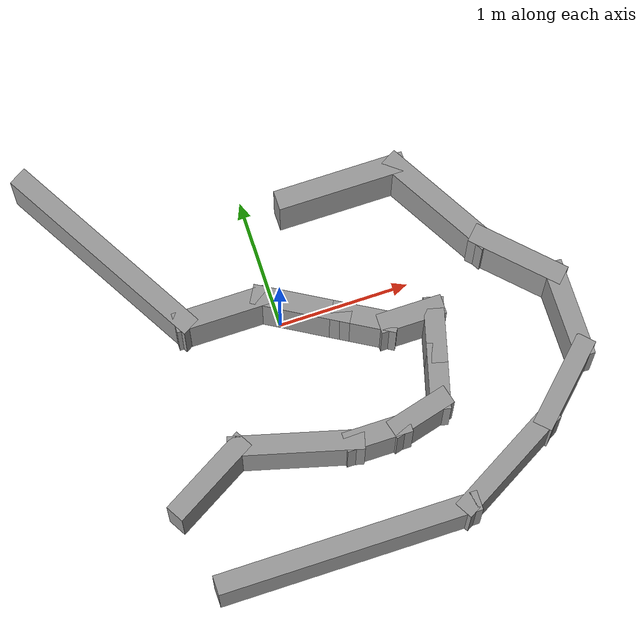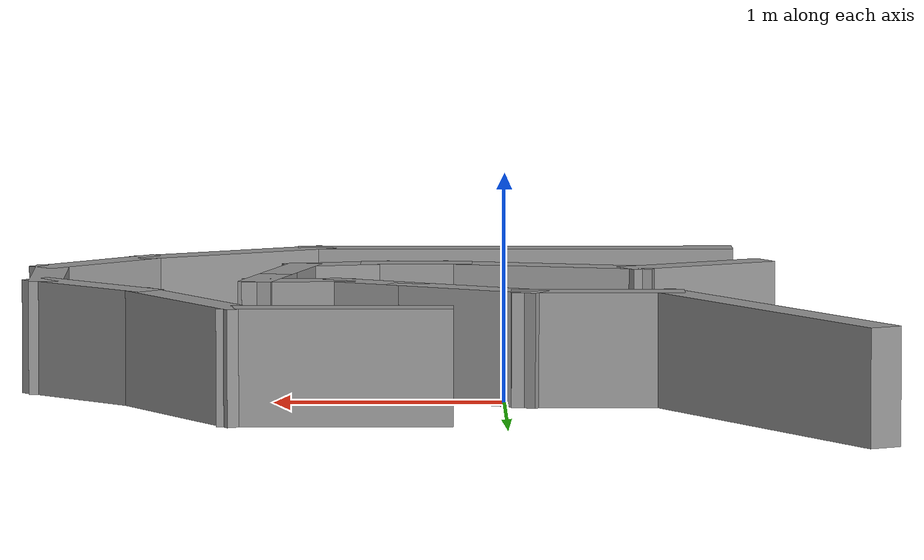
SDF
<?xml version='1.0'?>
<sdf version='1.6'>
  <model name='narrow_passage'>
    <pose frame=''>0.252807 -0.159194 0 0 -0 0</pose>
    <link name='Wall_10'>
      <collision name='Wall_10_Collision'>
        <geometry>
          <box>
            <size>1 0.15 0.5</size>
          </box>
        </geometry>
        <pose frame=''>0 0 0.25 0 -0 0</pose>
      </collision>
      <visual name='Wall_10_Visual'>
        <pose frame=''>0 0 0.25 0 -0 0</pose>
        <geometry>
          <box>
            <size>1 0.15 0.5</size>
          </box>
        </geometry>
        <material>
          <script>
            <uri>file://media/materials/scripts/gazebo.material</uri>
            <name>Gazebo/Grey</name>
          </script>
          <ambient>1 1 1 1</ambient>
        </material>
        <meta>
          <layer>0</layer>
        </meta>
      </visual>
      <pose frame=''>1.11369 0.575194 0 0 -0 2.09447</pose>
    </link>
    <link name='Wall_11'>
      <collision name='Wall_11_Collision'>
        <geometry>
          <box>
            <size>1 0.15 0.5</size>
          </box>
        </geometry>
        <pose frame=''>0 0 0.25 0 -0 0</pose>
      </collision>
      <visual name='Wall_11_Visual'>
        <pose frame=''>0 0 0.25 0 -0 0</pose>
        <geometry>
          <box>
            <size>1 0.15 0.5</size>
          </box>
        </geometry>
        <material>
          <script>
            <uri>file://media/materials/scripts/gazebo.material</uri>
            <name>Gazebo/Grey</name>
          </script>
          <ambient>1 1 1 1</ambient>
        </material>
        <meta>
          <layer>0</layer>
        </meta>
      </visual>
      <pose frame=''>0.476193 0.943194 0 0 -0 3.14159</pose>
    </link>
    <link name='Wall_13'>
      <collision name='Wall_13_Collision'>
        <geometry>
          <box>
            <size>0.75 0.15 0.5</size>
          </box>
        </geometry>
        <pose frame=''>0 0 0.25 0 -0 0</pose>
      </collision>
      <visual name='Wall_13_Visual'>
        <pose frame=''>0 0 0.25 0 -0 0</pose>
        <geometry>
          <box>
            <size>0.75 0.15 0.5</size>
          </box>
        </geometry>
        <material>
          <script>
            <uri>file://media/materials/scripts/gazebo.material</uri>
            <name>Gazebo/Grey</name>
          </script>
          <ambient>1 1 1 1</ambient>
        </material>
        <meta>
          <layer>0</layer>
        </meta>
      </visual>
      <pose frame=''>-1.13231 -0.890806 0 0 -0 0.524112</pose>
    </link>
    <link name='Wall_14'>
      <collision name='Wall_14_Collision'>
        <geometry>
          <box>
            <size>1 0.15 0.5</size>
          </box>
        </geometry>
        <pose frame=''>0 0 0.25 0 -0 0</pose>
      </collision>
      <visual name='Wall_14_Visual'>
        <pose frame=''>0 0 0.25 0 -0 0</pose>
        <geometry>
          <box>
            <size>1 0.15 0.5</size>
          </box>
        </geometry>
        <material>
          <script>
            <uri>file://media/materials/scripts/gazebo.material</uri>
            <name>Gazebo/Grey</name>
          </script>
          <ambient>1 1 1 1</ambient>
        </material>
        <meta>
          <layer>0</layer>
        </meta>
      </visual>
      <pose frame=''>-0.462307 -0.850806 0 0 -0 -0.261815</pose>
    </link>
    <link name='Wall_15'>
      <collision name='Wall_15_Collision'>
        <geometry>
          <box>
            <size>0.5 0.15 0.5</size>
          </box>
        </geometry>
        <pose frame=''>0 0 0.25 0 -0 0</pose>
      </collision>
      <visual name='Wall_15_Visual'>
        <pose frame=''>0 0 0.25 0 -0 0</pose>
        <geometry>
          <box>
            <size>0.5 0.15 0.5</size>
          </box>
        </geometry>
        <material>
          <script>
            <uri>file://media/materials/scripts/gazebo.material</uri>
            <name>Gazebo/Grey</name>
          </script>
          <ambient>1 1 1 1</ambient>
        </material>
        <meta>
          <layer>0</layer>
        </meta>
      </visual>
      <pose frame=''>0.123193 -0.960806 0 0 -0 0</pose>
    </link>
    <link name='Wall_16'>
      <collision name='Wall_16_Collision'>
        <geometry>
          <box>
            <size>0.5 0.15 0.5</size>
          </box>
        </geometry>
        <pose frame=''>0 0 0.25 0 -0 0</pose>
      </collision>
      <visual name='Wall_16_Visual'>
        <pose frame=''>0 0 0.25 0 -0 0</pose>
        <geometry>
          <box>
            <size>0.5 0.15 0.5</size>
          </box>
        </geometry>
        <material>
          <script>
            <uri>file://media/materials/scripts/gazebo.material</uri>
            <name>Gazebo/Grey</name>
          </script>
          <ambient>1 1 1 1</ambient>
        </material>
        <meta>
          <layer>0</layer>
        </meta>
      </visual>
      <pose frame=''>0.467193 -0.915806 0 0 -0 0.260234</pose>
    </link>
    <link name='Wall_17'>
      <collision name='Wall_17_Collision'>
        <geometry>
          <box>
            <size>0.5 0.15 0.5</size>
          </box>
        </geometry>
        <pose frame=''>0 0 0.25 0 -0 0</pose>
      </collision>
      <visual name='Wall_17_Visual'>
        <pose frame=''>0 0 0.25 0 -0 0</pose>
        <geometry>
          <box>
            <size>0.5 0.15 0.5</size>
          </box>
        </geometry>
        <material>
          <script>
            <uri>file://media/materials/scripts/gazebo.material</uri>
            <name>Gazebo/Grey</name>
          </script>
          <ambient>1 1 1 1</ambient>
        </material>
        <meta>
          <layer>0</layer>
        </meta>
      </visual>
      <pose frame=''>0.681693 -0.701806 0 0 -0 1.3078</pose>
    </link>
    <link name='Wall_18'>
      <collision name='Wall_18_Collision'>
        <geometry>
          <box>
            <size>0.5 0.15 0.5</size>
          </box>
        </geometry>
        <pose frame=''>0 0 0.25 0 -0 0</pose>
      </collision>
      <visual name='Wall_18_Visual'>
        <pose frame=''>0 0 0.25 0 -0 0</pose>
        <geometry>
          <box>
            <size>0.5 0.15 0.5</size>
          </box>
        </geometry>
        <material>
          <script>
            <uri>file://media/materials/scripts/gazebo.material</uri>
            <name>Gazebo/Grey</name>
          </script>
          <ambient>1 1 1 1</ambient>
        </material>
        <meta>
          <layer>0</layer>
        </meta>
      </visual>
      <pose frame=''>0.772193 -0.363306 0 0 -0 1.3113</pose>
    </link>
    <link name='Wall_19'>
      <collision name='Wall_19_Collision'>
        <geometry>
          <box>
            <size>0.5 0.15 0.5</size>
          </box>
        </geometry>
        <pose frame=''>0 0 0.25 0 -0 0</pose>
      </collision>
      <visual name='Wall_19_Visual'>
        <pose frame=''>0 0 0.25 0 -0 0</pose>
        <geometry>
          <box>
            <size>0.5 0.15 0.5</size>
          </box>
        </geometry>
        <material>
          <script>
            <uri>file://media/materials/scripts/gazebo.material</uri>
            <name>Gazebo/Grey</name>
          </script>
          <ambient>1 1 1 1</ambient>
        </material>
        <meta>
          <layer>0</layer>
        </meta>
      </visual>
      <pose frame=''>0.642193 -0.193806 0 0 -0 3.14159</pose>
    </link>
    <link name='Wall_20'>
      <collision name='Wall_20_Collision'>
        <geometry>
          <box>
            <size>0.5 0.15 0.5</size>
          </box>
        </geometry>
        <pose frame=''>0 0 0.25 0 -0 0</pose>
      </collision>
      <visual name='Wall_20_Visual'>
        <pose frame=''>0 0 0.25 0 -0 0</pose>
        <geometry>
          <box>
            <size>0.5 0.15 0.5</size>
          </box>
        </geometry>
        <material>
          <script>
            <uri>file://media/materials/scripts/gazebo.material</uri>
            <name>Gazebo/Grey</name>
          </script>
          <ambient>1 1 1 1</ambient>
        </material>
        <meta>
          <layer>0</layer>
        </meta>
      </visual>
      <pose frame=''>0.315693 -0.106306 0 0 -0 2.61784</pose>
    </link>
    <link name='Wall_21'>
      <collision name='Wall_21_Collision'>
        <geometry>
          <box>
            <size>0.75 0.15 0.5</size>
          </box>
        </geometry>
        <pose frame=''>0 0 0.25 0 -0 0</pose>
      </collision>
      <visual name='Wall_21_Visual'>
        <pose frame=''>0 0 0.25 0 -0 0</pose>
        <geometry>
          <box>
            <size>0.75 0.15 0.5</size>
          </box>
        </geometry>
        <material>
          <script>
            <uri>file://media/materials/scripts/gazebo.material</uri>
            <name>Gazebo/Grey</name>
          </script>
          <ambient>1 1 1 1</ambient>
        </material>
        <meta>
          <layer>0</layer>
        </meta>
      </visual>
      <pose frame=''>-0.095307 0.131194 0 0 -0 2.61748</pose>
    </link>
    <link name='Wall_22'>
      <collision name='Wall_22_Collision'>
        <geometry>
          <box>
            <size>0.75 0.15 0.5</size>
          </box>
        </geometry>
        <pose frame=''>0 0 0.25 0 -0 0</pose>
      </collision>
      <visual name='Wall_22_Visual'>
        <pose frame=''>0 0 0.25 0 -0 0</pose>
        <geometry>
          <box>
            <size>0.75 0.15 0.5</size>
          </box>
        </geometry>
        <material>
          <script>
            <uri>file://media/materials/scripts/gazebo.material</uri>
            <name>Gazebo/Grey</name>
          </script>
          <ambient>1 1 1 1</ambient>
        </material>
        <meta>
          <layer>0</layer>
        </meta>
      </visual>
      <pose frame=''>-0.654807 0.281194 0 0 -0 3.14159</pose>
    </link>
    <link name='Wall_23'>
      <collision name='Wall_23_Collision'>
        <geometry>
          <box>
            <size>1.75 0.15 0.5</size>
          </box>
        </geometry>
        <pose frame=''>0 0 0.25 0 -0 0</pose>
      </collision>
      <visual name='Wall_23_Visual'>
        <pose frame=''>0 0 0.25 0 -0 0</pose>
        <geometry>
          <box>
            <size>1.75 0.15 0.5</size>
          </box>
        </geometry>
        <material>
          <script>
            <uri>file://media/materials/scripts/gazebo.material</uri>
            <name>Gazebo/Grey</name>
          </script>
          <ambient>1 1 1 1</ambient>
        </material>
        <meta>
          <layer>0</layer>
        </meta>
      </visual>
      <pose frame=''>-1.35481 0.974014 0 0 -0 2.0944</pose>
    </link>
    <link name='Wall_4'>
      <collision name='Wall_4_Collision'>
        <geometry>
          <box>
            <size>2 0.15 0.5</size>
          </box>
        </geometry>
        <pose frame=''>0 0 0.25 0 -0 0</pose>
      </collision>
      <visual name='Wall_4_Visual'>
        <pose frame=''>0 0 0.25 0 -0 0</pose>
        <geometry>
          <box>
            <size>2 0.15 0.5</size>
          </box>
        </geometry>
        <material>
          <script>
            <uri>file://media/materials/scripts/gazebo.material</uri>
            <name>Gazebo/Grey</name>
          </script>
          <ambient>1 1 1 1</ambient>
        </material>
        <meta>
          <layer>0</layer>
        </meta>
      </visual>
      <pose frame=''>-0.334807 -1.66681 0 0 -0 0</pose>
    </link>
    <link name='Wall_5'>
      <collision name='Wall_5_Collision'>
        <geometry>
          <box>
            <size>1 0.15 0.5</size>
          </box>
        </geometry>
        <pose frame=''>0 0 0.25 0 -0 0</pose>
      </collision>
      <visual name='Wall_5_Visual'>
        <pose frame=''>0 0 0.25 0 -0 0</pose>
        <geometry>
          <box>
            <size>1 0.15 0.5</size>
          </box>
        </geometry>
        <material>
          <script>
            <uri>file://media/materials/scripts/gazebo.material</uri>
            <name>Gazebo/Grey</name>
          </script>
          <ambient>1 1 1 1</ambient>
        </material>
        <meta>
          <layer>0</layer>
        </meta>
      </visual>
      <pose frame=''>0.958193 -1.45431 0 0 -0 0.52367</pose>
    </link>
    <link name='Wall_6'>
      <collision name='Wall_6_Collision'>
        <geometry>
          <box>
            <size>0.75 0.15 0.5</size>
          </box>
        </geometry>
        <pose frame=''>0 0 0.25 0 -0 0</pose>
      </collision>
      <visual name='Wall_6_Visual'>
        <pose frame=''>0 0 0.25 0 -0 0</pose>
        <geometry>
          <box>
            <size>0.75 0.15 0.5</size>
          </box>
        </geometry>
        <material>
          <script>
            <uri>file://media/materials/scripts/gazebo.material</uri>
            <name>Gazebo/Grey</name>
          </script>
          <ambient>1 1 1 1</ambient>
        </material>
        <meta>
          <layer>0</layer>
        </meta>
      </visual>
      <pose frame=''>1.53869 -1.02981 0 0 -0 0.78422</pose>
    </link>
    <link name='Wall_7'>
      <collision name='Wall_7_Collision'>
        <geometry>
          <box>
            <size>0.75 0.15 0.5</size>
          </box>
        </geometry>
        <pose frame=''>0 0 0.25 0 -0 0</pose>
      </collision>
      <visual name='Wall_7_Visual'>
        <pose frame=''>0 0 0.25 0 -0 0</pose>
        <geometry>
          <box>
            <size>0.75 0.15 0.5</size>
          </box>
        </geometry>
        <material>
          <script>
            <uri>file://media/materials/scripts/gazebo.material</uri>
            <name>Gazebo/Grey</name>
          </script>
          <ambient>1 1 1 1</ambient>
        </material>
        <meta>
          <layer>0</layer>
        </meta>
      </visual>
      <pose frame=''>1.75119 -0.517806 0 0 -0 1.5708</pose>
    </link>
    <link name='Wall_8'>
      <collision name='Wall_8_Collision'>
        <geometry>
          <box>
            <size>0.751041 0.15 0.5</size>
          </box>
        </geometry>
        <pose frame=''>0 0 0.25 0 -0 0</pose>
      </collision>
      <visual name='Wall_8_Visual'>
        <pose frame=''>0 0 0.25 0 -0 0</pose>
        <geometry>
          <box>
            <size>0.751041 0.15 0.5</size>
          </box>
        </geometry>
        <material>
          <script>
            <uri>file://media/materials/scripts/gazebo.material</uri>
            <name>Gazebo/Grey</name>
          </script>
          <ambient>1 1 1 1</ambient>
        </material>
        <meta>
          <layer>0</layer>
        </meta>
      </visual>
      <pose frame=''>1.53869 -0.005306 0 0 -0 2.35619</pose>
    </link>
    <static>1</static>
  </model>
</sdf>
